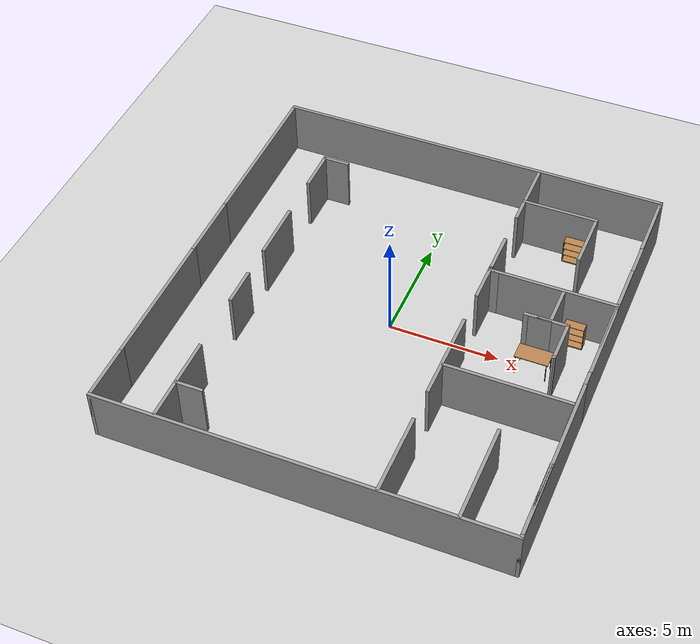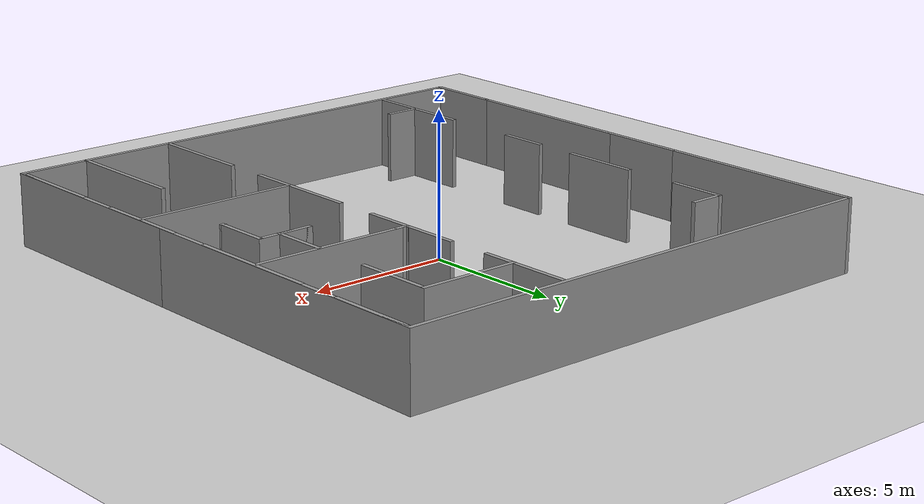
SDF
<sdf version="1.7">
 <world name="default">
  <model name="ground_plane">
   <static>1</static>
   <link name="link">
    <collision name="collision">
     <geometry><plane><normal>0 0 1</normal><size>100 100</size></plane></geometry>
     <surface>
      <contact><collide_bitmask>65535</collide_bitmask></contact>
      <friction><ode><mu>100</mu><mu2>50</mu2></ode></friction>
     </surface>
    </collision>
    <visual name="visual">
     <cast_shadows>0</cast_shadows>
     <geometry><plane><normal>0 0 1</normal><size>100 100</size></plane></geometry>
     <material>
      <script><uri>file://media/materials/scripts/gazebo.material</uri><name>Gazebo/Grey</name></script>
     </material>
    </visual>
   </link>
  </model>
  <model name="tembok">
   <pose>0.235969 -0.259973 0 0 -0 0</pose>
   <link name="Wall_0">
    <collision name="Wall_0_Collision">
     <geometry><box><size>6.5 0.15 2.5</size></box></geometry>
     <pose>0 0 1.25 0 -0 0</pose>
    </collision>
    <visual name="Wall_0_Visual">
     <pose>0 0 1.25 0 -0 0</pose>
     <geometry><box><size>6.5 0.15 2.5</size></box></geometry>
     <material>
      <script><uri>file://media/materials/scripts/gazebo.material</uri><name>Gazebo/Grey</name></script>
      <ambient>1 1 1 1</ambient>
     </material>
     <meta><layer>0</layer></meta>
    </visual>
    <pose>-9.05 -3.925 0 0 -0 -1.5708</pose>
   </link>
   <link name="Wall_10">
    <collision name="Wall_10_Collision">
     <geometry><box><size>8 0.15 2.5</size></box></geometry>
     <pose>0 0 1.25 0 -0 0</pose>
    </collision>
    <visual name="Wall_10_Visual">
     <pose>0 0 1.25 0 -0 0</pose>
     <geometry><box><size>8 0.15 2.5</size></box></geometry>
     <material>
      <script><uri>file://media/materials/scripts/gazebo.material</uri><name>Gazebo/Grey</name></script>
      <ambient>1 1 1 1</ambient>
     </material>
     <meta><layer>0</layer></meta>
    </visual>
    <pose>9.05 -5.775 0 0 -0 1.5708</pose>
   </link>
   <link name="Wall_2">
    <collision name="Wall_2_Collision">
     <geometry><box><size>3.25 0.15 2.5</size></box></geometry>
     <pose>0 0 1.25 0 -0 0</pose>
    </collision>
    <visual name="Wall_2_Visual">
     <pose>0 0 1.25 0 -0 0</pose>
     <geometry><box><size>3.25 0.15 2.5</size></box></geometry>
     <material>
      <script><uri>file://media/materials/scripts/gazebo.material</uri><name>Gazebo/Grey</name></script>
      <ambient>1 1 1 1</ambient>
     </material>
     <meta><layer>0</layer></meta>
    </visual>
    <pose>-9.05 0.8 0 0 -0 1.5708</pose>
   </link>
   <link name="Wall_4">
    <collision name="Wall_4_Collision">
     <geometry><box><size>7.5 0.15 2.5</size></box></geometry>
     <pose>0 0 1.25 0 -0 0</pose>
    </collision>
    <visual name="Wall_4_Visual">
     <pose>0 0 1.25 0 -0 0</pose>
     <geometry><box><size>7.5 0.15 2.5</size></box></geometry>
     <material>
      <script><uri>file://media/materials/scripts/gazebo.material</uri><name>Gazebo/Grey</name></script>
      <ambient>1 1 1 1</ambient>
     </material>
     <meta><layer>0</layer></meta>
    </visual>
    <pose>-9.05 6.025 0 0 -0 1.5708</pose>
   </link>
   <link name="Wall_5">
    <collision name="Wall_5_Collision">
     <geometry><box><size>18.25 0.15 2.5</size></box></geometry>
     <pose>0 0 1.25 0 -0 0</pose>
    </collision>
    <visual name="Wall_5_Visual">
     <pose>0 0 1.25 0 -0 0</pose>
     <geometry><box><size>18.25 0.15 2.5</size></box></geometry>
     <material>
      <script><uri>file://media/materials/scripts/gazebo.material</uri><name>Gazebo/Grey</name></script>
      <ambient>1 1 1 1</ambient>
     </material>
     <meta><layer>0</layer></meta>
    </visual>
    <pose>-0 9.7 0 0 -0 0</pose>
   </link>
   <link name="Wall_6">
    <collision name="Wall_6_Collision">
     <geometry><box><size>12 0.15 2.5</size></box></geometry>
     <pose>0 0 1.25 0 -0 0</pose>
    </collision>
    <visual name="Wall_6_Visual">
     <pose>0 0 1.25 0 -0 0</pose>
     <geometry><box><size>12 0.15 2.5</size></box></geometry>
     <material>
      <script><uri>file://media/materials/scripts/gazebo.material</uri><name>Gazebo/Grey</name></script>
      <ambient>1 1 1 1</ambient>
     </material>
     <meta><layer>0</layer></meta>
    </visual>
    <pose>9.05 3.775 0 0 -0 -1.5708</pose>
   </link>
   <link name="Wall_8">
    <collision name="Wall_8_Collision">
     <geometry><box><size>2.75 0.15 2.5</size></box></geometry>
     <pose>0 0 1.25 0 -0 0</pose>
    </collision>
    <visual name="Wall_8_Visual">
     <pose>0 0 1.25 0 -0 0</pose>
     <geometry><box><size>2.75 0.15 2.5</size></box></geometry>
     <material>
      <script><uri>file://media/materials/scripts/gazebo.material</uri><name>Gazebo/Grey</name></script>
      <ambient>1 1 1 1</ambient>
     </material>
     <meta><layer>0</layer></meta>
    </visual>
    <pose>-9.05 -8.4 0 0 -0 -1.5708</pose>
   </link>
   <link name="Wall_9">
    <collision name="Wall_9_Collision">
     <geometry><box><size>18.25 0.15 2.5</size></box></geometry>
     <pose>0 0 1.25 0 -0 0</pose>
    </collision>
    <visual name="Wall_9_Visual">
     <pose>0 0 1.25 0 -0 0</pose>
     <geometry><box><size>18.25 0.15 2.5</size></box></geometry>
     <material>
      <script><uri>file://media/materials/scripts/gazebo.material</uri><name>Gazebo/Grey</name></script>
      <ambient>1 1 1 1</ambient>
     </material>
     <meta><layer>0</layer></meta>
    </visual>
    <pose>-0 -9.7 0 0 -0 0</pose>
   </link>
   <static>1</static>
  </model>
  <model name="samping_0">
   <pose>8.73859 -0.259974 0 0 -0 0</pose>
   <link name="Wall_31">
    <collision name="Wall_31_Collision">
     <geometry><box><size>3 0.15 2.5</size></box></geometry>
     <pose>0 0 1.25 0 -0 0</pose>
    </collision>
    <visual name="Wall_31_Visual">
     <pose>0 0 1.25 0 -0 0</pose>
     <geometry><box><size>3 0.15 2.5</size></box></geometry>
     <material>
      <script><uri>file://media/materials/scripts/gazebo.material</uri><name>Gazebo/Grey</name></script>
      <ambient>1 1 1 1</ambient>
     </material>
     <meta><layer>0</layer></meta>
    </visual>
    <pose>0.530829 8.05 0 0 -0 -1.5708</pose>
   </link>
   <link name="Wall_33">
    <collision name="Wall_33_Collision">
     <geometry><box><size>4.75 0.15 2.5</size></box></geometry>
     <pose>0 0 1.25 0 -0 0</pose>
    </collision>
    <visual name="Wall_33_Visual">
     <pose>0 0 1.25 0 -0 0</pose>
     <geometry><box><size>4.75 0.15 2.5</size></box></geometry>
     <material>
      <script><uri>file://media/materials/scripts/gazebo.material</uri><name>Gazebo/Grey</name></script>
      <ambient>1 1 1 1</ambient>
     </material>
     <meta><layer>0</layer></meta>
    </visual>
    <pose>0.530829 2.725 0 0 -0 -1.5708</pose>
   </link>
   <link name="Wall_35">
    <collision name="Wall_35_Collision">
     <geometry><box><size>3.5 0.15 2.5</size></box></geometry>
     <pose>0 0 1.25 0 -0 0</pose>
    </collision>
    <visual name="Wall_35_Visual">
     <pose>0 0 1.25 0 -0 0</pose>
     <geometry><box><size>3.5 0.15 2.5</size></box></geometry>
     <material>
      <script><uri>file://media/materials/scripts/gazebo.material</uri><name>Gazebo/Grey</name></script>
      <ambient>1 1 1 1</ambient>
     </material>
     <meta><layer>0</layer></meta>
    </visual>
    <pose>0.530829 -2.85 0 0 -0 -1.5708</pose>
   </link>
   <link name="Wall_37">
    <collision name="Wall_37_Collision">
     <geometry><box><size>3.5 0.15 2.5</size></box></geometry>
     <pose>0 0 1.25 0 -0 0</pose>
    </collision>
    <visual name="Wall_37_Visual">
     <pose>0 0 1.25 0 -0 0</pose>
     <geometry><box><size>3.5 0.15 2.5</size></box></geometry>
     <material>
      <script><uri>file://media/materials/scripts/gazebo.material</uri><name>Gazebo/Grey</name></script>
      <ambient>1 1 1 1</ambient>
     </material>
     <meta><layer>0</layer></meta>
    </visual>
    <pose>0.530829 -7.8 0 0 -0 -1.5708</pose>
   </link>
   <link name="Wall_39">
    <collision name="Wall_39_Collision">
     <geometry><box><size>5.5 0.15 2.5</size></box></geometry>
     <pose>0 0 1.25 0 -0 0</pose>
    </collision>
    <visual name="Wall_39_Visual">
     <pose>0 0 1.25 0 -0 0</pose>
     <geometry><box><size>5.5 0.15 2.5</size></box></geometry>
     <material>
      <script><uri>file://media/materials/scripts/gazebo.material</uri><name>Gazebo/Grey</name></script>
      <ambient>1 1 1 1</ambient>
     </material>
     <meta><layer>0</layer></meta>
    </visual>
    <pose>-2.19664 2.86376 0 0 -0 3.14159</pose>
   </link>
   <link name="Wall_41">
    <collision name="Wall_41_Collision">
     <geometry><box><size>5.75 0.15 2.5</size></box></geometry>
     <pose>0 0 1.25 0 -0 0</pose>
    </collision>
    <visual name="Wall_41_Visual">
     <pose>0 0 1.25 0 -0 0</pose>
     <geometry><box><size>5.75 0.15 2.5</size></box></geometry>
     <material>
      <script><uri>file://media/materials/scripts/gazebo.material</uri><name>Gazebo/Grey</name></script>
      <ambient>1 1 1 1</ambient>
     </material>
     <meta><layer>0</layer></meta>
    </visual>
    <pose>-2.28666 -2.92545 0 0 -0 3.14159</pose>
   </link>
   <static>1</static>
  </model>
  <model name="samping3">
   <pose>0.878279 -0.32056 0 0 -0 0</pose>
   <link name="Wall_11">
    <collision name="Wall_11_Collision">
     <geometry><box><size>3.25 0.15 2.5</size></box></geometry>
     <pose>0 0 1.25 0 -0 0</pose>
    </collision>
    <visual name="Wall_11_Visual">
     <pose>0 0 1.25 0 -0 0</pose>
     <geometry><box><size>3.25 0.15 2.5</size></box></geometry>
     <material>
      <script><uri>file://media/materials/scripts/gazebo.material</uri><name>Gazebo/Grey</name></script>
      <ambient>1 1 1 1</ambient>
     </material>
     <meta><layer>0</layer></meta>
    </visual>
    <pose>2.69955 8.05362 0 0 -0 1.5708</pose>
   </link>
   <link name="Wall_2">
    <collision name="Wall_2_Collision">
     <geometry><box><size>4.25 0.15 2.5</size></box></geometry>
     <pose>0 0 1.25 0 -0 0</pose>
    </collision>
    <visual name="Wall_2_Visual">
     <pose>0 0 1.25 0 -0 0</pose>
     <geometry><box><size>4.25 0.15 2.5</size></box></geometry>
     <material>
      <script><uri>file://media/materials/scripts/gazebo.material</uri><name>Gazebo/Grey</name></script>
      <ambient>1 1 1 1</ambient>
     </material>
     <meta><layer>0</layer></meta>
    </visual>
    <pose>2.69955 -2.34638 0 0 -0 -1.5708</pose>
   </link>
   <link name="Wall_21">
    <collision name="Wall_21_Collision">
     <geometry><box><size>0.25 0.15 2.5</size></box></geometry>
     <pose>0 0 1.25 0 -0 0</pose>
    </collision>
    <visual name="Wall_21_Visual">
     <pose>0 0 1.25 0 -0 0</pose>
     <geometry><box><size>0.25 0.15 2.5</size></box></geometry>
     <material>
      <script><uri>file://media/materials/scripts/gazebo.material</uri><name>Gazebo/Grey</name></script>
      <ambient>1 1 1 1</ambient>
     </material>
     <meta><layer>0</layer></meta>
    </visual>
    <pose>2.70984 2.97166 0 0 -0 -1.5708</pose>
   </link>
   <link name="Wall_22">
    <collision name="Wall_22_Collision">
     <geometry><box><size>0.5 0.15 2.5</size></box></geometry>
     <pose>0 0 1.25 0 -0 0</pose>
    </collision>
    <visual name="Wall_22_Visual">
     <pose>0 0 1.25 0 -0 0</pose>
     <geometry><box><size>0.5 0.15 2.5</size></box></geometry>
     <material>
      <script><uri>file://media/materials/scripts/gazebo.material</uri><name>Gazebo/Grey</name></script>
      <ambient>1 1 1 1</ambient>
     </material>
     <meta><layer>0</layer></meta>
    </visual>
    <pose>2.88484 2.92166 0 0 -0 0</pose>
   </link>
   <link name="Wall_24">
    <collision name="Wall_24_Collision">
     <geometry><box><size>3.5 0.15 2.5</size></box></geometry>
     <pose>0 0 1.25 0 -0 0</pose>
    </collision>
    <visual name="Wall_24_Visual">
     <pose>0 0 1.25 0 -0 0</pose>
     <geometry><box><size>3.5 0.15 2.5</size></box></geometry>
     <material>
      <script><uri>file://media/materials/scripts/gazebo.material</uri><name>Gazebo/Grey</name></script>
      <ambient>1 1 1 1</ambient>
     </material>
     <meta><layer>0</layer></meta>
    </visual>
    <pose>4.37148 7.58996 0 0 -0 0</pose>
   </link>
   <link name="Wall_25">
    <collision name="Wall_25_Collision">
     <geometry><box><size>2.75 0.15 2.5</size></box></geometry>
     <pose>0 0 1.25 0 -0 0</pose>
    </collision>
    <visual name="Wall_25_Visual">
     <pose>0 0 1.25 0 -0 0</pose>
     <geometry><box><size>2.75 0.15 2.5</size></box></geometry>
     <material>
      <script><uri>file://media/materials/scripts/gazebo.material</uri><name>Gazebo/Grey</name></script>
      <ambient>1 1 1 1</ambient>
     </material>
     <meta><layer>0</layer></meta>
    </visual>
    <pose>6.04648 6.28996 0 0 -0 -1.5708</pose>
   </link>
   <link name="Wall_28">
    <collision name="Wall_28_Collision">
     <geometry><box><size>2 0.15 2.5</size></box></geometry>
     <pose>0 0 1.25 0 -0 0</pose>
    </collision>
    <visual name="Wall_28_Visual">
     <pose>0 0 1.25 0 -0 0</pose>
     <geometry><box><size>2 0.15 2.5</size></box></geometry>
     <material>
      <script><uri>file://media/materials/scripts/gazebo.material</uri><name>Gazebo/Grey</name></script>
      <ambient>1 1 1 1</ambient>
     </material>
     <meta><layer>0</layer></meta>
    </visual>
    <pose>6.04648 1.96496 0 0 -0 -1.5708</pose>
   </link>
   <link name="Wall_29">
    <collision name="Wall_29_Collision">
     <geometry><box><size>1.25 0.15 2.5</size></box></geometry>
     <pose>0 0 1.25 0 -0 0</pose>
    </collision>
    <visual name="Wall_29_Visual">
     <pose>0 0 1.25 0 -0 0</pose>
     <geometry><box><size>1.25 0.15 2.5</size></box></geometry>
     <material>
      <script><uri>file://media/materials/scripts/gazebo.material</uri><name>Gazebo/Grey</name></script>
      <ambient>1 1 1 1</ambient>
     </material>
     <meta><layer>0</layer></meta>
    </visual>
    <pose>5.49648 1.03996 0 0 -0 3.14159</pose>
   </link>
   <link name="Wall_30">
    <collision name="Wall_30_Collision">
     <geometry><box><size>2 0.15 2.5</size></box></geometry>
     <pose>0 0 1.25 0 -0 0</pose>
    </collision>
    <visual name="Wall_30_Visual">
     <pose>0 0 1.25 0 -0 0</pose>
     <geometry><box><size>2 0.15 2.5</size></box></geometry>
     <material>
      <script><uri>file://media/materials/scripts/gazebo.material</uri><name>Gazebo/Grey</name></script>
      <ambient>1 1 1 1</ambient>
     </material>
     <meta><layer>0</layer></meta>
    </visual>
    <pose>5.87148 1.03996 0 0 -0 0</pose>
   </link>
   <link name="Wall_31">
    <collision name="Wall_31_Collision">
     <geometry><box><size>2 0.15 2.5</size></box></geometry>
     <pose>0 0 1.25 0 -0 0</pose>
    </collision>
    <visual name="Wall_31_Visual">
     <pose>0 0 1.25 0 -0 0</pose>
     <geometry><box><size>2 0.15 2.5</size></box></geometry>
     <material>
      <script><uri>file://media/materials/scripts/gazebo.material</uri><name>Gazebo/Grey</name></script>
      <ambient>1 1 1 1</ambient>
     </material>
     <meta><layer>0</layer></meta>
    </visual>
    <pose>6.79648 0.114957 0 0 -0 -1.5708</pose>
   </link>
   <link name="Wall_33">
    <collision name="Wall_33_Collision">
     <geometry><box><size>0.169397 0.15 2.5</size></box></geometry>
     <pose>0 0 1.25 0 -0 0</pose>
    </collision>
    <visual name="Wall_33_Visual">
     <pose>0 0 1.25 0 -0 0</pose>
     <geometry><box><size>0.169397 0.15 2.5</size></box></geometry>
     <material>
      <script><uri>file://media/materials/scripts/gazebo.material</uri><name>Gazebo/Grey</name></script>
      <ambient>1 1 1 1</ambient>
     </material>
     <meta><layer>0</layer></meta>
    </visual>
    <pose>6.78699 -0.812016 0 0 -0 -2.93676</pose>
   </link>
   <link name="Wall_36">
    <collision name="Wall_36_Collision">
     <geometry><box><size>4.5 0.15 2.5</size></box></geometry>
     <pose>0 0 1.25 0 -0 0</pose>
    </collision>
    <visual name="Wall_36_Visual">
     <pose>0 0 1.25 0 -0 0</pose>
     <geometry><box><size>4.5 0.15 2.5</size></box></geometry>
     <material>
      <script><uri>file://media/materials/scripts/gazebo.material</uri><name>Gazebo/Grey</name></script>
      <ambient>1 1 1 1</ambient>
     </material>
     <meta><layer>0</layer></meta>
    </visual>
    <pose>5.98105 -7.42862 0 0 -0 1.5708</pose>
   </link>
   <link name="Wall_4">
    <collision name="Wall_4_Collision">
     <geometry><box><size>3.75 0.15 2.5</size></box></geometry>
     <pose>0 0 1.25 0 -0 0</pose>
    </collision>
    <visual name="Wall_4_Visual">
     <pose>0 0 1.25 0 -0 0</pose>
     <geometry><box><size>3.75 0.15 2.5</size></box></geometry>
     <material>
      <script><uri>file://media/materials/scripts/gazebo.material</uri><name>Gazebo/Grey</name></script>
      <ambient>1 1 1 1</ambient>
     </material>
     <meta><layer>0</layer></meta>
    </visual>
    <pose>2.69955 -7.79638 0 0 -0 -1.5708</pose>
   </link>
   <link name="Wall_40">
    <collision name="Wall_40_Collision">
     <geometry><box><size>4 0.15 2.5</size></box></geometry>
     <pose>0 0 1.25 0 -0 0</pose>
    </collision>
    <visual name="Wall_40_Visual">
     <pose>0 0 1.25 0 -0 0</pose>
     <geometry><box><size>4 0.15 2.5</size></box></geometry>
     <material>
      <script><uri>file://media/materials/scripts/gazebo.material</uri><name>Gazebo/Grey</name></script>
      <ambient>1 1 1 1</ambient>
     </material>
     <meta><layer>0</layer></meta>
    </visual>
    <pose>-6.81017 -7.60923 0 0 -0 1.5708</pose>
   </link>
   <link name="Wall_45">
    <collision name="Wall_45_Collision">
     <geometry><box><size>2.75 0.15 2.5</size></box></geometry>
     <pose>0 0 1.25 0 -0 0</pose>
    </collision>
    <visual name="Wall_45_Visual">
     <pose>0 0 1.25 0 -0 0</pose>
     <geometry><box><size>2.75 0.15 2.5</size></box></geometry>
     <material>
      <script><uri>file://media/materials/scripts/gazebo.material</uri><name>Gazebo/Grey</name></script>
      <ambient>1 1 1 1</ambient>
     </material>
     <meta><layer>0</layer></meta>
    </visual>
    <pose>-6.81017 1.66577 0 0 -0 1.5708</pose>
   </link>
   <link name="Wall_47">
    <collision name="Wall_47_Collision">
     <geometry><box><size>2 0.15 2.5</size></box></geometry>
     <pose>0 0 1.25 0 -0 0</pose>
    </collision>
    <visual name="Wall_47_Visual">
     <pose>0 0 1.25 0 -0 0</pose>
     <geometry><box><size>2 0.15 2.5</size></box></geometry>
     <material>
      <script><uri>file://media/materials/scripts/gazebo.material</uri><name>Gazebo/Grey</name></script>
      <ambient>1 1 1 1</ambient>
     </material>
     <meta><layer>0</layer></meta>
    </visual>
    <pose>-6.81017 5.99077 0 0 -0 1.5708</pose>
   </link>
   <link name="Wall_48">
    <collision name="Wall_48_Collision">
     <geometry><box><size>1.25 0.15 2.5</size></box></geometry>
     <pose>0 0 1.25 0 -0 0</pose>
    </collision>
    <visual name="Wall_48_Visual">
     <pose>0 0 1.25 0 -0 0</pose>
     <geometry><box><size>1.25 0.15 2.5</size></box></geometry>
     <material>
      <script><uri>file://media/materials/scripts/gazebo.material</uri><name>Gazebo/Grey</name></script>
      <ambient>1 1 1 1</ambient>
     </material>
     <meta><layer>0</layer></meta>
    </visual>
    <pose>-6.26017 6.91577 0 0 -0 0</pose>
   </link>
   <link name="Wall_50">
    <collision name="Wall_50_Collision">
     <geometry><box><size>1.75 0.15 2.5</size></box></geometry>
     <pose>0 0 1.25 0 -0 0</pose>
    </collision>
    <visual name="Wall_50_Visual">
     <pose>0 0 1.25 0 -0 0</pose>
     <geometry><box><size>1.75 0.15 2.5</size></box></geometry>
     <material>
      <script><uri>file://media/materials/scripts/gazebo.material</uri><name>Gazebo/Grey</name></script>
      <ambient>1 1 1 1</ambient>
     </material>
     <meta><layer>0</layer></meta>
    </visual>
    <pose>-6.81017 -2.03423 0 0 -0 1.5708</pose>
   </link>
   <link name="Wall_52">
    <collision name="Wall_52_Collision">
     <geometry><box><size>1.25 0.15 2.5</size></box></geometry>
     <pose>0 0 1.25 0 -0 0</pose>
    </collision>
    <visual name="Wall_52_Visual">
     <pose>0 0 1.25 0 -0 0</pose>
     <geometry><box><size>1.25 0.15 2.5</size></box></geometry>
     <material>
      <script><uri>file://media/materials/scripts/gazebo.material</uri><name>Gazebo/Grey</name></script>
      <ambient>1 1 1 1</ambient>
     </material>
     <meta><layer>0</layer></meta>
    </visual>
    <pose>-6.21391 -7.7763 0 0 -0 0</pose>
   </link>
   <link name="Wall_7">
    <collision name="Wall_7_Collision">
     <geometry><box><size>3.75 0.15 2.5</size></box></geometry>
     <pose>0 0 1.25 0 -0 0</pose>
    </collision>
    <visual name="Wall_7_Visual">
     <pose>0 0 1.25 0 -0 0</pose>
     <geometry><box><size>3.75 0.15 2.5</size></box></geometry>
     <material>
      <script><uri>file://media/materials/scripts/gazebo.material</uri><name>Gazebo/Grey</name></script>
      <ambient>1 1 1 1</ambient>
     </material>
     <meta><layer>0</layer></meta>
    </visual>
    <pose>2.69955 3.10362 0 0 -0 1.5708</pose>
   </link>
   <static>1</static>
  </model>
  <model name="bookshelf">
   <static>1</static>
   <link name="link">
    <inertial><mass>1</mass></inertial>
    <collision name="back">
     <pose>0 0.005 0.6 0 -0 0</pose>
     <geometry><box><size>0.9 0.01 1.2</size></box></geometry>
    </collision>
    <visual name="visual1">
     <pose>0 0.005 0.6 0 -0 0</pose>
     <geometry><box><size>0.9 0.01 1.2</size></box></geometry>
     <material>
      <script><uri>file://media/materials/scripts/gazebo.material</uri><name>Gazebo/Wood</name></script>
     </material>
    </visual>
    <collision name="left_side">
     <pose>0.45 -0.195 0.6 0 -0 0</pose>
     <geometry><box><size>0.02 0.4 1.2</size></box></geometry>
    </collision>
    <visual name="visual2">
     <pose>0.45 -0.195 0.6 0 -0 0</pose>
     <geometry><box><size>0.02 0.4 1.2</size></box></geometry>
     <material>
      <script><uri>file://media/materials/scripts/gazebo.material</uri><name>Gazebo/Wood</name></script>
     </material>
    </visual>
    <collision name="right_side">
     <pose>-0.45 -0.195 0.6 0 -0 0</pose>
     <geometry><box><size>0.02 0.4 1.2</size></box></geometry>
    </collision>
    <visual name="visual3">
     <pose>-0.45 -0.195 0.6 0 -0 0</pose>
     <geometry><box><size>0.02 0.4 1.2</size></box></geometry>
     <material>
      <script><uri>file://media/materials/scripts/gazebo.material</uri><name>Gazebo/Wood</name></script>
     </material>
    </visual>
    <collision name="bottom">
     <pose>0 -0.195 0.03 0 -0 0</pose>
     <geometry><box><size>0.88 0.4 0.06</size></box></geometry>
    </collision>
    <visual name="visual4">
     <pose>0 -0.195 0.03 0 -0 0</pose>
     <geometry><box><size>0.88 0.4 0.06</size></box></geometry>
     <material>
      <script><uri>file://media/materials/scripts/gazebo.material</uri><name>Gazebo/Wood</name></script>
     </material>
    </visual>
    <collision name="top">
     <pose>0 -0.195 1.19 0 -0 0</pose>
     <geometry><box><size>0.88 0.4 0.02</size></box></geometry>
    </collision>
    <visual name="visual5">
     <pose>0 -0.195 1.19 0 -0 0</pose>
     <geometry><box><size>0.88 0.4 0.02</size></box></geometry>
     <material>
      <script><uri>file://media/materials/scripts/gazebo.material</uri><name>Gazebo/Wood</name></script>
     </material>
    </visual>
    <collision name="low_shelf">
     <pose>0 -0.195 0.43 0 -0 0</pose>
     <geometry><box><size>0.88 0.4 0.02</size></box></geometry>
    </collision>
    <visual name="visual6">
     <pose>0 -0.195 0.43 0 -0 0</pose>
     <geometry><box><size>0.88 0.4 0.02</size></box></geometry>
     <material>
      <script><uri>file://media/materials/scripts/gazebo.material</uri><name>Gazebo/Wood</name></script>
     </material>
    </visual>
    <collision name="high_shelf">
     <pose>0 -0.195 0.8 0 -0 0</pose>
     <geometry><box><size>0.88 0.4 0.02</size></box></geometry>
    </collision>
    <visual name="visual7">
     <pose>0 -0.195 0.8 0 -0 0</pose>
     <geometry><box><size>0.88 0.4 0.02</size></box></geometry>
     <material>
      <script><uri>file://media/materials/scripts/gazebo.material</uri><name>Gazebo/Wood</name></script>
     </material>
    </visual>
   </link>
   <pose>6.14593 7.12294 0 0 -0 0</pose>
  </model>
  <model name="bookshelf_1">
   <static>1</static>
   <link name="link">
    <inertial><mass>1</mass></inertial>
    <collision name="back">
     <pose>0 0.005 0.6 0 -0 0</pose>
     <geometry><box><size>0.9 0.01 1.2</size></box></geometry>
    </collision>
    <visual name="visual1">
     <pose>0 0.005 0.6 0 -0 0</pose>
     <geometry><box><size>0.9 0.01 1.2</size></box></geometry>
     <material>
      <script><uri>file://media/materials/scripts/gazebo.material</uri><name>Gazebo/Wood</name></script>
     </material>
    </visual>
    <collision name="left_side">
     <pose>0.45 -0.195 0.6 0 -0 0</pose>
     <geometry><box><size>0.02 0.4 1.2</size></box></geometry>
    </collision>
    <visual name="visual2">
     <pose>0.45 -0.195 0.6 0 -0 0</pose>
     <geometry><box><size>0.02 0.4 1.2</size></box></geometry>
     <material>
      <script><uri>file://media/materials/scripts/gazebo.material</uri><name>Gazebo/Wood</name></script>
     </material>
    </visual>
    <collision name="right_side">
     <pose>-0.45 -0.195 0.6 0 -0 0</pose>
     <geometry><box><size>0.02 0.4 1.2</size></box></geometry>
    </collision>
    <visual name="visual3">
     <pose>-0.45 -0.195 0.6 0 -0 0</pose>
     <geometry><box><size>0.02 0.4 1.2</size></box></geometry>
     <material>
      <script><uri>file://media/materials/scripts/gazebo.material</uri><name>Gazebo/Wood</name></script>
     </material>
    </visual>
    <collision name="bottom">
     <pose>0 -0.195 0.03 0 -0 0</pose>
     <geometry><box><size>0.88 0.4 0.06</size></box></geometry>
    </collision>
    <visual name="visual4">
     <pose>0 -0.195 0.03 0 -0 0</pose>
     <geometry><box><size>0.88 0.4 0.06</size></box></geometry>
     <material>
      <script><uri>file://media/materials/scripts/gazebo.material</uri><name>Gazebo/Wood</name></script>
     </material>
    </visual>
    <collision name="top">
     <pose>0 -0.195 1.19 0 -0 0</pose>
     <geometry><box><size>0.88 0.4 0.02</size></box></geometry>
    </collision>
    <visual name="visual5">
     <pose>0 -0.195 1.19 0 -0 0</pose>
     <geometry><box><size>0.88 0.4 0.02</size></box></geometry>
     <material>
      <script><uri>file://media/materials/scripts/gazebo.material</uri><name>Gazebo/Wood</name></script>
     </material>
    </visual>
    <collision name="low_shelf">
     <pose>0 -0.195 0.43 0 -0 0</pose>
     <geometry><box><size>0.88 0.4 0.02</size></box></geometry>
    </collision>
    <visual name="visual6">
     <pose>0 -0.195 0.43 0 -0 0</pose>
     <geometry><box><size>0.88 0.4 0.02</size></box></geometry>
     <material>
      <script><uri>file://media/materials/scripts/gazebo.material</uri><name>Gazebo/Wood</name></script>
     </material>
    </visual>
    <collision name="high_shelf">
     <pose>0 -0.195 0.8 0 -0 0</pose>
     <geometry><box><size>0.88 0.4 0.02</size></box></geometry>
    </collision>
    <visual name="visual7">
     <pose>0 -0.195 0.8 0 -0 0</pose>
     <geometry><box><size>0.88 0.4 0.02</size></box></geometry>
     <material>
      <script><uri>file://media/materials/scripts/gazebo.material</uri><name>Gazebo/Wood</name></script>
     </material>
    </visual>
   </link>
   <pose>7.69195 2.25546 0 0 -0 0</pose>
  </model>
  <model name="bookshelf_2">
   <static>1</static>
   <link name="link">
    <inertial><mass>1</mass></inertial>
    <collision name="back">
     <pose>0 0.005 0.6 0 -0 0</pose>
     <geometry><box><size>0.9 0.01 1.2</size></box></geometry>
    </collision>
    <visual name="visual1">
     <pose>0 0.005 0.6 0 -0 0</pose>
     <geometry><box><size>0.9 0.01 1.2</size></box></geometry>
     <material>
      <script><uri>file://media/materials/scripts/gazebo.material</uri><name>Gazebo/Wood</name></script>
     </material>
    </visual>
    <collision name="left_side">
     <pose>0.45 -0.195 0.6 0 -0 0</pose>
     <geometry><box><size>0.02 0.4 1.2</size></box></geometry>
    </collision>
    <visual name="visual2">
     <pose>0.45 -0.195 0.6 0 -0 0</pose>
     <geometry><box><size>0.02 0.4 1.2</size></box></geometry>
     <material>
      <script><uri>file://media/materials/scripts/gazebo.material</uri><name>Gazebo/Wood</name></script>
     </material>
    </visual>
    <collision name="right_side">
     <pose>-0.45 -0.195 0.6 0 -0 0</pose>
     <geometry><box><size>0.02 0.4 1.2</size></box></geometry>
    </collision>
    <visual name="visual3">
     <pose>-0.45 -0.195 0.6 0 -0 0</pose>
     <geometry><box><size>0.02 0.4 1.2</size></box></geometry>
     <material>
      <script><uri>file://media/materials/scripts/gazebo.material</uri><name>Gazebo/Wood</name></script>
     </material>
    </visual>
    <collision name="bottom">
     <pose>0 -0.195 0.03 0 -0 0</pose>
     <geometry><box><size>0.88 0.4 0.06</size></box></geometry>
    </collision>
    <visual name="visual4">
     <pose>0 -0.195 0.03 0 -0 0</pose>
     <geometry><box><size>0.88 0.4 0.06</size></box></geometry>
     <material>
      <script><uri>file://media/materials/scripts/gazebo.material</uri><name>Gazebo/Wood</name></script>
     </material>
    </visual>
    <collision name="top">
     <pose>0 -0.195 1.19 0 -0 0</pose>
     <geometry><box><size>0.88 0.4 0.02</size></box></geometry>
    </collision>
    <visual name="visual5">
     <pose>0 -0.195 1.19 0 -0 0</pose>
     <geometry><box><size>0.88 0.4 0.02</size></box></geometry>
     <material>
      <script><uri>file://media/materials/scripts/gazebo.material</uri><name>Gazebo/Wood</name></script>
     </material>
    </visual>
    <collision name="low_shelf">
     <pose>0 -0.195 0.43 0 -0 0</pose>
     <geometry><box><size>0.88 0.4 0.02</size></box></geometry>
    </collision>
    <visual name="visual6">
     <pose>0 -0.195 0.43 0 -0 0</pose>
     <geometry><box><size>0.88 0.4 0.02</size></box></geometry>
     <material>
      <script><uri>file://media/materials/scripts/gazebo.material</uri><name>Gazebo/Wood</name></script>
     </material>
    </visual>
    <collision name="high_shelf">
     <pose>0 -0.195 0.8 0 -0 0</pose>
     <geometry><box><size>0.88 0.4 0.02</size></box></geometry>
    </collision>
    <visual name="visual7">
     <pose>0 -0.195 0.8 0 -0 0</pose>
     <geometry><box><size>0.88 0.4 0.02</size></box></geometry>
     <material>
      <script><uri>file://media/materials/scripts/gazebo.material</uri><name>Gazebo/Wood</name></script>
     </material>
    </visual>
   </link>
   <pose>7.57725 -9.39592 0 0 -0 0</pose>
  </model>
  <model name="table">
   <static>1</static>
   <link name="link">
    <collision name="surface">
     <pose>0 0 1 0 -0 0</pose>
     <geometry><box><size>1.5 0.8 0.03</size></box></geometry>
     <surface><friction><ode><mu>0.6</mu><mu2>0.6</mu2></ode></friction></surface>
    </collision>
    <visual name="visual1">
     <pose>0 0 1 0 -0 0</pose>
     <geometry><box><size>1.5 0.8 0.03</size></box></geometry>
     <material>
      <script><uri>file://media/materials/scripts/gazebo.material</uri><name>Gazebo/Wood</name></script>
     </material>
    </visual>
    <collision name="front_left_leg">
     <pose>0.68 0.38 0.5 0 -0 0</pose>
     <geometry><cylinder><radius>0.02</radius><length>1</length></cylinder></geometry>
    </collision>
    <visual name="front_left_leg">
     <pose>0.68 0.38 0.5 0 -0 0</pose>
     <geometry><cylinder><radius>0.02</radius><length>1</length></cylinder></geometry>
     <material>
      <script><uri>file://media/materials/scripts/gazebo.material</uri><name>Gazebo/Grey</name></script>
     </material>
    </visual>
    <collision name="front_right_leg">
     <pose>0.68 -0.38 0.5 0 -0 0</pose>
     <geometry><cylinder><radius>0.02</radius><length>1</length></cylinder></geometry>
    </collision>
    <visual name="front_right_leg">
     <pose>0.68 -0.38 0.5 0 -0 0</pose>
     <geometry><cylinder><radius>0.02</radius><length>1</length></cylinder></geometry>
     <material>
      <script><uri>file://media/materials/scripts/gazebo.material</uri><name>Gazebo/Grey</name></script>
     </material>
    </visual>
    <collision name="back_right_leg">
     <pose>-0.68 -0.38 0.5 0 -0 0</pose>
     <geometry><cylinder><radius>0.02</radius><length>1</length></cylinder></geometry>
    </collision>
    <visual name="back_right_leg">
     <pose>-0.68 -0.38 0.5 0 -0 0</pose>
     <geometry><cylinder><radius>0.02</radius><length>1</length></cylinder></geometry>
     <material>
      <script><uri>file://media/materials/scripts/gazebo.material</uri><name>Gazebo/Grey</name></script>
     </material>
    </visual>
    <collision name="back_left_leg">
     <pose>-0.68 0.38 0.5 0 -0 0</pose>
     <geometry><cylinder><radius>0.02</radius><length>1</length></cylinder></geometry>
    </collision>
    <visual name="back_left_leg">
     <pose>-0.68 0.38 0.5 0 -0 0</pose>
     <geometry><cylinder><radius>0.02</radius><length>1</length></cylinder></geometry>
     <material>
      <script><uri>file://media/materials/scripts/gazebo.material</uri><name>Gazebo/Grey</name></script>
     </material>
    </visual>
   </link>
   <pose>6.54661 -0.03445 0 0 -0 0</pose>
  </model>
 </world>
</sdf>
